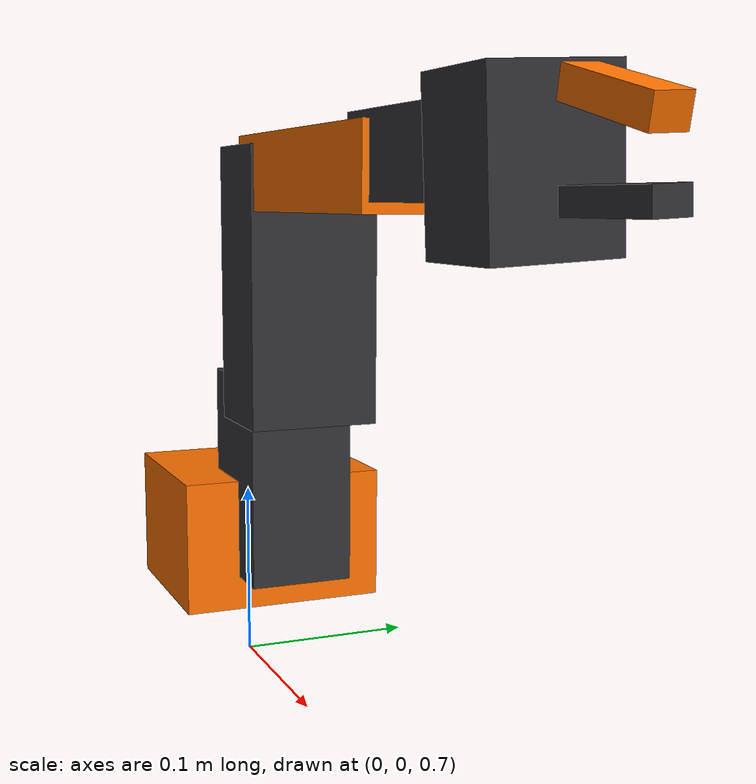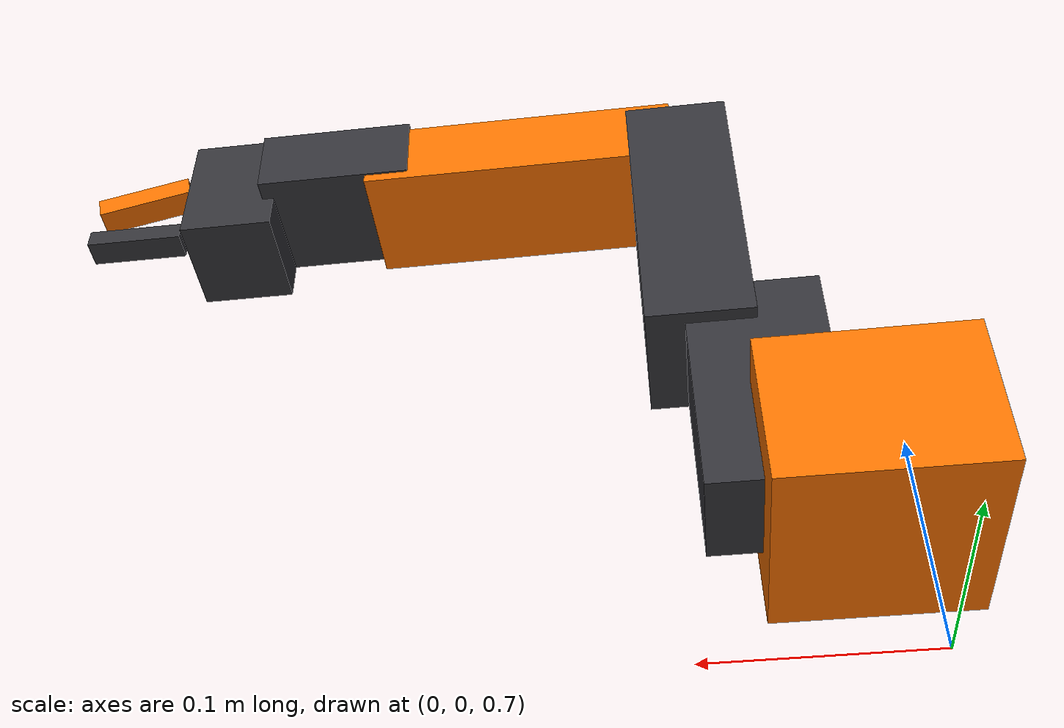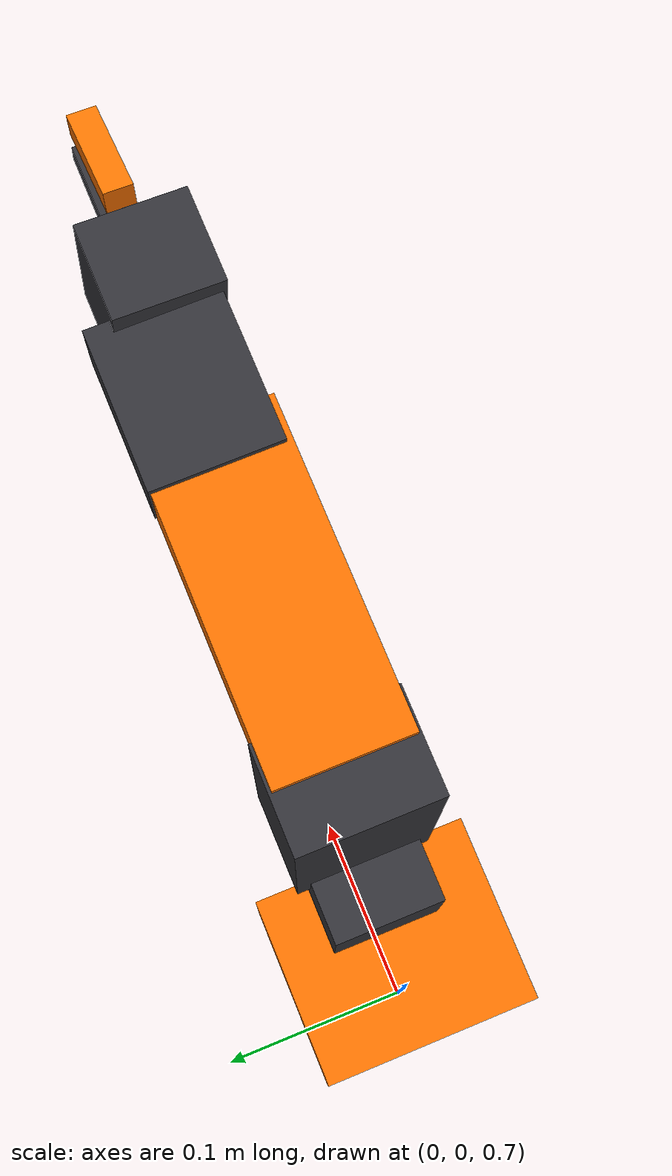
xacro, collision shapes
<?xml version="1.0"?>
<robot name="so101" xmlns:xacro="http://www.ros.org/wiki/xacro">
  <xacro:arg name="controllers" default=""/>
  <xacro:include filename="$(find so101_description)/urdf/so101_macro.xacro"/>

  <!-- The world frame is the table centre at floor level; the arm stands on
       the 0.75 m table top, facing +x. -->
  <link name="world"/>
  <xacro:so101 parent="world">
    <origin xyz="0 0 0.75" rpy="0 0 0"/>
  </xacro:so101>

  <!-- Start in the SRDF "home" pose with the jaws open. -->
  <xacro:macro name="position_joint" params="name initial">
    <joint name="${name}">
      <command_interface name="position"/>
      <state_interface name="position">
        <param name="initial_value">${initial}</param>
      </state_interface>
      <state_interface name="velocity"/>
    </joint>
  </xacro:macro>

  <ros2_control name="so101" type="system">
    <hardware>
      <plugin>gz_ros2_control/GazeboSimSystem</plugin>
    </hardware>
    <xacro:position_joint name="shoulder_pan" initial="0.0"/>
    <xacro:position_joint name="shoulder_lift" initial="-1.3"/>
    <xacro:position_joint name="elbow_flex" initial="0.6"/>
    <xacro:position_joint name="wrist_flex" initial="1.6"/>
    <xacro:position_joint name="wrist_roll" initial="0.0"/>
    <xacro:position_joint name="gripper" initial="0.6"/>
  </ros2_control>

  <gazebo>
    <plugin filename="gz_ros2_control-system" name="gz_ros2_control::GazeboSimROS2ControlPlugin">
      <parameters>$(arg controllers)</parameters>
    </plugin>
  </gazebo>

  <!-- Rubber-like jaw pads (the pieces' own friction is set in the world). -->
  <gazebo reference="gripper_link">
    <mu1>1.5</mu1>
    <mu2>1.5</mu2>
  </gazebo>
  <gazebo reference="moving_jaw_so101_v1_link">
    <mu1>1.5</mu1>
    <mu2>1.5</mu2>
  </gazebo>

  <xacro:macro name="grasp_latch" params="piece link">
    <gazebo>
      <plugin filename="gz-sim-detachable-joint-system" name="gz::sim::systems::DetachableJoint">
        <parent_link>gripper_link</parent_link>
        <child_model>${piece}</child_model>
        <child_link>${link}</child_link>
        <attach_topic>/lab/latch/${piece}/attach</attach_topic>
        <detach_topic>/lab/latch/${piece}/detach</detach_topic>
        <output_topic>/lab/latch/${piece}/state</output_topic>
        <suppress_child_warning>true</suppress_child_warning>
      </plugin>
    </gazebo>
  </xacro:macro>
  <xacro:grasp_latch piece="red_cube" link="cube_link"/>
  <xacro:grasp_latch piece="blue_cylinder" link="cylinder_link"/>
  <xacro:grasp_latch piece="green_block" link="block_link"/>
</robot>

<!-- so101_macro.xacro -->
<robot xmlns:xacro="http://www.ros.org/wiki/xacro">
  <xacro:macro name="so101" params="parent *origin">
    <material name="3d_printed"><color rgba="1.0 0.45 0.0 1.0"/></material>
    <material name="sts3215"><color rgba="0.2 0.2 0.22 1.0"/></material>
    <joint name="so101_mount" type="fixed">
      <parent link="${parent}"/>
      <child link="base_link"/>
      <xacro:insert_block name="origin"/>
    </joint>
    <link name="base_link">
      <inertial>
        <origin xyz="0.0137179 -5.19711e-05 0.0334843" rpy="0 0 0"/>
        <mass value="0.147"/>
        <inertia ixx="0.000114686" ixy="-4.59787e-07" ixz="4.97151e-06" iyy="0.000136117" iyz="9.75275e-08" izz="0.000130364"/>
      </inertial>
      <visual>
        <origin xyz="-0.00636471 -9.94414e-05 -0.0024" rpy="1.5708 -1.67685e-15 1.5708"/>
        <geometry><mesh filename="file://$(find so101_description)/meshes/base_motor_holder_so101_v1.stl"/></geometry>
        <material name="3d_printed"/>
      </visual>
      <visual>
        <origin xyz="-0.00636471 -8.97657e-09 -0.0024" rpy="1.5708 -2.78073e-29 1.5708"/>
        <geometry><mesh filename="file://$(find so101_description)/meshes/base_so101_v2.stl"/></geometry>
        <material name="3d_printed"/>
      </visual>
      <visual>
        <origin xyz="0.0263353 -8.97657e-09 0.0437" rpy="-8.21148e-16 7.84513e-18 1.249e-15"/>
        <geometry><mesh filename="file://$(find so101_description)/meshes/sts3215_03a_v1.stl"/></geometry>
        <material name="sts3215"/>
      </visual>
      <visual>
        <origin xyz="-0.0309827 -0.000199441 0.0474" rpy="1.5708 -1.35493e-14 1.5708"/>
        <geometry><mesh filename="file://$(find so101_description)/meshes/waveshare_mounting_plate_so101_v2.stl"/></geometry>
        <material name="3d_printed"/>
      </visual>
      <collision>
        <origin xyz="0.0168 0.0000 0.0336" rpy="0 0 0"/>
        <geometry><box size="0.0956 0.1109 0.0720"/></geometry>
      </collision>
    </link>
    <link name="shoulder_link">
      <inertial>
        <origin xyz="-0.0307604 -1.66727e-05 -0.0252713" rpy="0 0 0"/>
        <mass value="0.100006"/>
        <inertia ixx="8.3759e-05" ixy="7.55525e-08" ixz="-1.16342e-06" iyy="8.10403e-05" iyz="1.54663e-07" izz="2.39783e-05"/>
      </inertial>
      <visual>
        <origin xyz="-0.0303992 0.000422241 -0.0417" rpy="1.5708 1.5708 0"/>
        <geometry><mesh filename="file://$(find so101_description)/meshes/sts3215_03a_v1.stl"/></geometry>
        <material name="sts3215"/>
      </visual>
      <visual>
        <origin xyz="-0.0675992 -0.000177759 0.0158499" rpy="1.5708 -1.5708 0"/>
        <geometry><mesh filename="file://$(find so101_description)/meshes/motor_holder_so101_base_v1.stl"/></geometry>
        <material name="3d_printed"/>
      </visual>
      <visual>
        <origin xyz="0.0122008 2.22413e-05 0.0464" rpy="-1.5708 2.35221e-33 0"/>
        <geometry><mesh filename="file://$(find so101_description)/meshes/rotation_pitch_so101_v1.stl"/></geometry>
        <material name="3d_printed"/>
      </visual>
      <collision>
        <origin xyz="-0.0192 0.0012 -0.0091" rpy="0 0 0"/>
        <geometry><box size="0.0628 0.0551 0.1106"/></geometry>
      </collision>
    </link>
    <link name="upper_arm_link">
      <inertial>
        <origin xyz="-0.0898471 -0.00838224 0.0184089" rpy="0 0 0"/>
        <mass value="0.103"/>
        <inertia ixx="4.08002e-05" ixy="-1.97819e-05" ixz="-4.03016e-08" iyy="0.000147318" iyz="8.97326e-09" izz="0.000142487"/>
      </inertial>
      <visual>
        <origin xyz="-0.11257 -0.0155 0.0187" rpy="-3.14159 -5.27356e-16 -1.5708"/>
        <geometry><mesh filename="file://$(find so101_description)/meshes/sts3215_03a_v1.stl"/></geometry>
        <material name="sts3215"/>
      </visual>
      <visual>
        <origin xyz="-0.065085 0.012 0.0182" rpy="3.14159 -0 -1.30911e-30"/>
        <geometry><mesh filename="file://$(find so101_description)/meshes/upper_arm_so101_v1.stl"/></geometry>
        <material name="3d_printed"/>
      </visual>
      <collision>
        <origin xyz="-0.0591 -0.0131 0.0202" rpy="0 0 0"/>
        <geometry><box size="0.1422 0.0502 0.0673"/></geometry>
      </collision>
    </link>
    <link name="lower_arm_link">
      <inertial>
        <origin xyz="-0.0980701 0.00324376 0.0182831" rpy="0 0 0"/>
        <mass value="0.104"/>
        <inertia ixx="2.87438e-05" ixy="7.41152e-06" ixz="1.26409e-06" iyy="0.000159844" iyz="-4.90188e-08" izz="0.00014529"/>
      </inertial>
      <visual>
        <origin xyz="-0.0648499 -0.032 0.0182" rpy="3.14159 -0 6.67202e-31"/>
        <geometry><mesh filename="file://$(find so101_description)/meshes/under_arm_so101_v1.stl"/></geometry>
        <material name="3d_printed"/>
      </visual>
      <visual>
        <origin xyz="-0.0648499 -0.032 0.018" rpy="-3.14159 -2.55351e-15 -1.83387e-30"/>
        <geometry><mesh filename="file://$(find so101_description)/meshes/motor_holder_so101_wrist_v1.stl"/></geometry>
        <material name="3d_printed"/>
      </visual>
      <visual>
        <origin xyz="-0.1224 0.0052 0.0187" rpy="-3.14159 -7.88861e-31 -3.14159"/>
        <geometry><mesh filename="file://$(find so101_description)/meshes/sts3215_03a_v1.stl"/></geometry>
        <material name="sts3215"/>
      </visual>
      <collision>
        <origin xyz="-0.0666 0.0034 0.0202" rpy="0 0 0"/>
        <geometry><box size="0.1571 0.0369 0.0644"/></geometry>
      </collision>
    </link>
    <link name="wrist_link">
      <inertial>
        <origin xyz="-0.000103312 -0.0386143 0.0281156" rpy="0 0 0"/>
        <mass value="0.079"/>
        <inertia ixx="3.68263e-05" ixy="1.7893e-08" ixz="-5.28128e-08" iyy="2.5391e-05" iyz="3.6412e-06" izz="2.1e-05"/>
      </inertial>
      <visual>
        <origin xyz="8.32667e-17 -0.0424 0.0306" rpy="1.5708 1.5708 0"/>
        <geometry><mesh filename="file://$(find so101_description)/meshes/sts3215_03a_no_horn_v1.stl"/></geometry>
        <material name="sts3215"/>
      </visual>
      <visual>
        <origin xyz="0 -0.028 0.0181" rpy="-1.5708 -1.5708 0"/>
        <geometry><mesh filename="file://$(find so101_description)/meshes/wrist_roll_pitch_so101_v2.stl"/></geometry>
        <material name="3d_printed"/>
      </visual>
      <collision>
        <origin xyz="-0.0022 -0.0269 0.0222" rpy="0 0 0"/>
        <geometry><box size="0.0357 0.0778 0.0623"/></geometry>
      </collision>
    </link>
    <link name="gripper_link">
      <inertial>
        <origin xyz="0.000213627 0.000245138 -0.025187" rpy="0 0 0"/>
        <mass value="0.087"/>
        <inertia ixx="2.75087e-05" ixy="-3.35241e-07" ixz="-5.7352e-06" iyy="4.33657e-05" iyz="-5.17847e-08" izz="3.45059e-05"/>
      </inertial>
      <visual>
        <origin xyz="0.0077 0.0001 -0.0234" rpy="-1.5708 -5.19179e-17 -1.66533e-16"/>
        <geometry><mesh filename="file://$(find so101_description)/meshes/sts3215_03a_v1.stl"/></geometry>
        <material name="sts3215"/>
      </visual>
      <visual>
        <origin xyz="8.32667e-17 -0.000218214 0.000949706" rpy="-3.14159 -5.55112e-17 0"/>
        <geometry><mesh filename="file://$(find so101_description)/meshes/wrist_roll_follower_so101_v1.stl"/></geometry>
        <material name="3d_printed"/>
      </visual>
      <collision>
        <origin xyz="-0.0024 -0.0020 -0.0225" rpy="0 0 0"/>
        <geometry><box size="0.0656 0.0520 0.0470"/></geometry>
      </collision>
      <collision>
        <origin xyz="-0.0149 -0.0002 -0.0791" rpy="0 0 0"/>
        <geometry><box size="0.0100 0.0140 0.0500"/></geometry>
      </collision>
    </link>
    <link name="gripper_frame_link">
      <inertial>
        <origin xyz="0 0 0" rpy="0 0 0"/>
        <mass value="1e-9"/>
        <inertia ixx="0" ixy="0" ixz="0" iyy="0" iyz="0" izz="0"/>
      </inertial>
    </link>
    <link name="moving_jaw_so101_v1_link">
      <inertial>
        <origin xyz="-0.00157495 -0.0300244 0.0192755" rpy="0 0 0"/>
        <mass value="0.012"/>
        <inertia ixx="6.61427e-06" ixy="-3.19807e-07" ixz="-5.90717e-09" iyy="1.89032e-06" iyz="-1.09945e-07" izz="5.28738e-06"/>
      </inertial>
      <visual>
        <origin xyz="-5.55112e-17 -5.55112e-17 0.0189" rpy="9.53145e-17 6.93889e-18 1.24077e-24"/>
        <geometry><mesh filename="file://$(find so101_description)/meshes/moving_jaw_so101_v1.stl"/></geometry>
        <material name="3d_printed"/>
      </visual>
      <collision>
        <origin xyz="-0.0041 -0.0557 0.0190" rpy="0 0 -0.25"/>
        <geometry><box size="0.0120 0.0500 0.0140"/></geometry>
      </collision>
    </link>
    <joint name="gripper_frame_joint" type="fixed">
      <origin xyz="-0.0079 -0.000218121 -0.0981274" rpy="0 3.14159 0"/>
      <parent link="gripper_link"/>
      <child link="gripper_frame_link"/>
    </joint>
    <joint name="gripper" type="revolute">
      <origin xyz="0.0202 0.0188 -0.0234" rpy="1.5708 -5.24284e-08 -1.41553e-15"/>
      <parent link="gripper_link"/>
      <child link="moving_jaw_so101_v1_link"/>
      <axis xyz="0 0 1"/>
      <limit effort="2.94" velocity="4.7" lower="-0.174533" upper="1.74533"/>
      <dynamics damping="0.6" friction="0.052"/>
    </joint>
    <joint name="wrist_roll" type="revolute">
      <origin xyz="5.55112e-17 -0.0611 0.0181" rpy="1.5708 0.0486795 3.14159"/>
      <parent link="wrist_link"/>
      <child link="gripper_link"/>
      <axis xyz="0 0 1"/>
      <limit effort="2.94" velocity="4.7" lower="-2.74385" upper="2.84121"/>
      <dynamics damping="0.6" friction="0.052"/>
    </joint>
    <joint name="wrist_flex" type="revolute">
      <origin xyz="-0.1349 0.0052 3.62355e-17" rpy="4.02456e-15 8.67362e-16 -1.5708"/>
      <parent link="lower_arm_link"/>
      <child link="wrist_link"/>
      <axis xyz="0 0 1"/>
      <limit effort="2.94" velocity="4.7" lower="-1.65806" upper="1.65806"/>
      <dynamics damping="0.6" friction="0.052"/>
    </joint>
    <joint name="elbow_flex" type="revolute">
      <origin xyz="-0.11257 -0.028 1.73763e-16" rpy="-3.63608e-16 8.74301e-16 1.5708"/>
      <parent link="upper_arm_link"/>
      <child link="lower_arm_link"/>
      <axis xyz="0 0 1"/>
      <limit effort="2.94" velocity="4.7" lower="-1.69" upper="1.69"/>
      <dynamics damping="0.6" friction="0.052"/>
    </joint>
    <joint name="shoulder_lift" type="revolute">
      <origin xyz="-0.0303992 -0.0182778 -0.0542" rpy="-1.5708 -1.5708 0"/>
      <parent link="shoulder_link"/>
      <child link="upper_arm_link"/>
      <axis xyz="0 0 1"/>
      <limit effort="2.94" velocity="4.7" lower="-1.74533" upper="1.74533"/>
      <dynamics damping="0.6" friction="0.052"/>
    </joint>
    <joint name="shoulder_pan" type="revolute">
      <origin xyz="0.0388353 -8.97657e-09 0.0624" rpy="3.14159 4.18253e-17 -3.14159"/>
      <parent link="base_link"/>
      <child link="shoulder_link"/>
      <axis xyz="0 0 1"/>
      <limit effort="2.94" velocity="4.7" lower="-1.91986" upper="1.91986"/>
      <dynamics damping="0.6" friction="0.052"/>
    </joint>
    <!-- Between the open jaws, where task goals put the piece centre. -->
    <link name="grasp_link"/>
    <joint name="grasp_joint" type="fixed">
      <origin xyz="-0.022 0 -0.004" rpy="0 0 0"/>
      <parent link="gripper_frame_link"/>
      <child link="grasp_link"/>
    </joint>
  </xacro:macro>
</robot>
